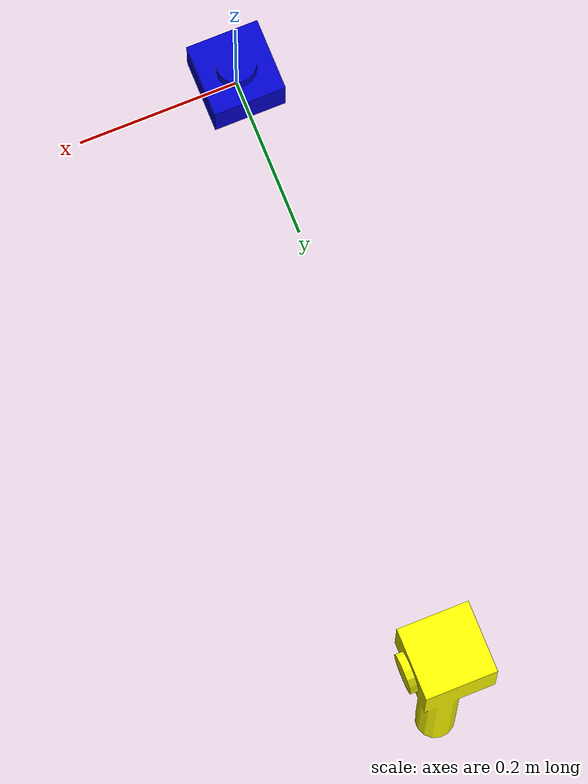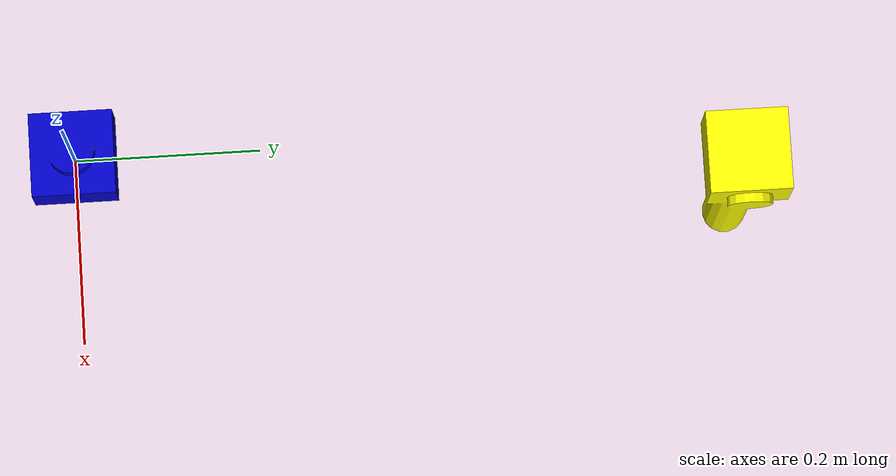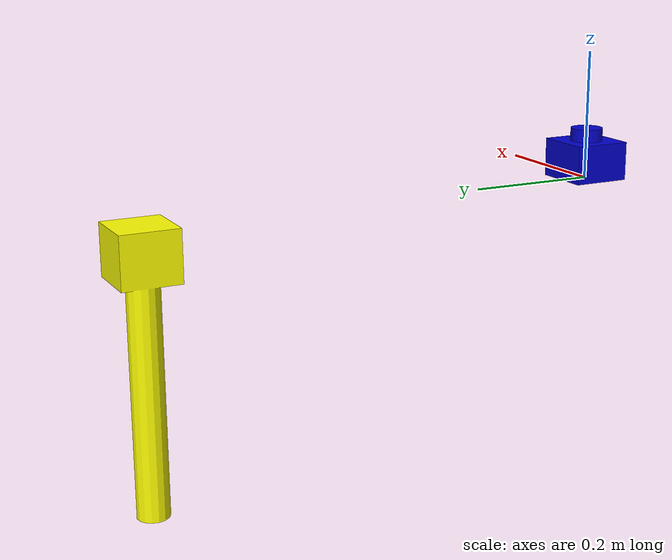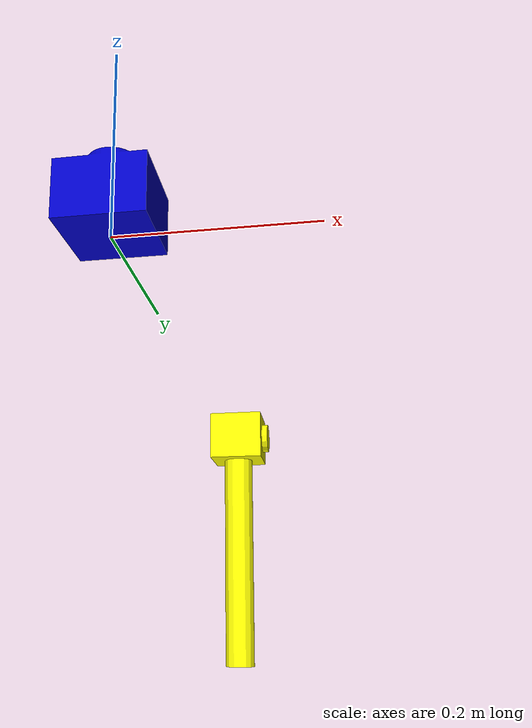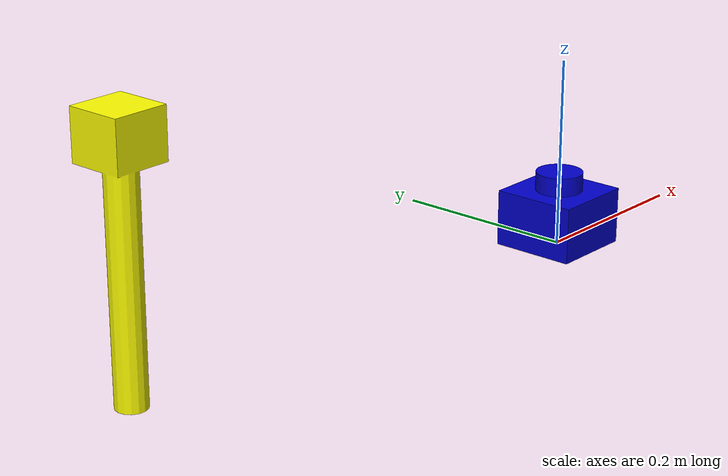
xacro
<?xml version="1.0"?>
<robot xmlns:xacro="http://www.ros.org/wiki/xacro" name="arm">

  <!-- Properties -->
  <xacro:property name="base_len" value="0.1"/>
  <xacro:property name="base_rad" value="0.2"/>
  <xacro:property name="rot_len" value="0.5"/>
  <xacro:property name="rot_rad" value="0.05"/>

  <!-- Base Link -->
  <link name="base_link">
    <visual>
      <origin xyz="0 0 0" rpy="0 0 0"/>
      <geometry>
        <mesh filename="package://armv1/meshes/base_link.STL"/>
      </geometry>
      <material name="blue">
        <color rgba="0 0 0.8 1"/>
      </material>
    </visual>
    <collision>
      <geometry>
        <mesh filename="package://armv1/meshes/base_link.STL"/>
      </geometry>
    </collision>
    <inertial>
      <mass value="0.52527"/>
      <inertia ixx="0.00053943" ixy="8.6574E-20" ixz="7.3971E-21" iyy="0.00053943" iyz="1.378E-21" izz="0.00066837"/>
    </inertial>
  </link>

  <!-- Joint 1 -->
  <joint name="joint_1" type="revolute">
    <origin xyz="0.03 0.73 0" rpy="0 0 0"/>
    <parent link="base_link"/>
    <child link="link_1"/>
    <axis xyz="1 0 0"/>
    <limit lower="-3.142" upper="3.142" effort="150" velocity="3"/>
  </joint>

  <!-- Link 1 -->
  <link name="link_1">
    <visual>
      <origin xyz="0 0 0" rpy="0 0 0"/>
      <geometry>
        <mesh filename="package://armv1/meshes/link_1.STL"/>
      </geometry>
      <material name="yellow">
        <color rgba="1 1 0 1"/>
      </material>
    </visual>
    <collision>
      <geometry>
        <mesh filename="package://armv1/meshes/link_1.STL"/>
      </geometry>
    </collision>
    <inertial>
      <mass value="0.52527"/>
      <inertia ixx="0.00053943" ixy="8.6574E-20" ixz="7.3971E-21" iyy="0.00053943" iyz="1.378E-21" izz="0.00066837"/>
    </inertial>
  </link>

</robot>
